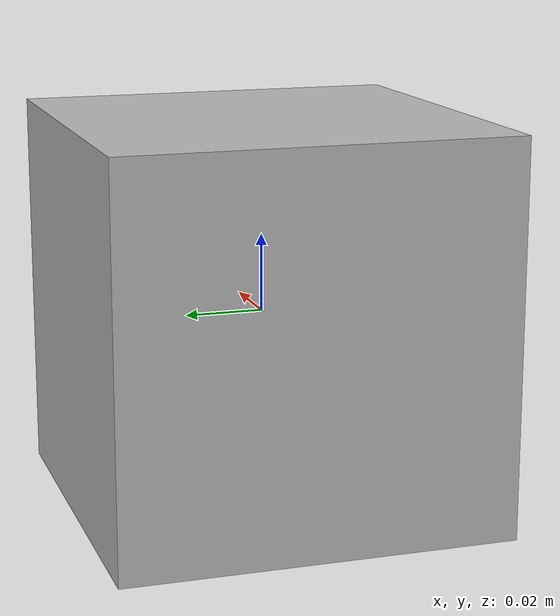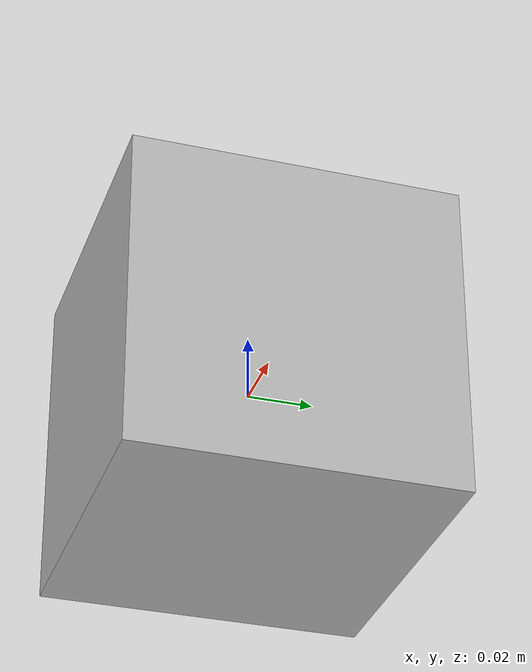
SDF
<?xml version="1.0"?>
<sdf version="1.5">
    <model name="camera">
        <pose>0 0 0 0 1.575 0</pose>
        <static>true</static>

        <link name="camera_link">
            <collision name="collision">
                <geometry>
                    <box>
                        <size>0.1 0.1 0.1</size>
                    </box>
                </geometry>
            </collision>
            <visual name="visual">
                <geometry>
                    <box>
                        <size>0.1 0.1 0.1</size>
                    </box>
                </geometry>
            </visual>
            <sensor name="camera" type="camera">
                <camera>
                    <horizontal_fov>1.047</horizontal_fov>
                    <image>
                        <width>320</width>
                        <height>240</height>
                    </image>
                    <clip>
                        <near>0.1</near>
                        <far>100</far>
                    </clip>
                </camera>
                <always_on>1</always_on>
                <update_rate>30</update_rate>
                <visualize>true</visualize>
                <topic>camera</topic>
            </sensor>
        </link>
    </model>
</sdf>
